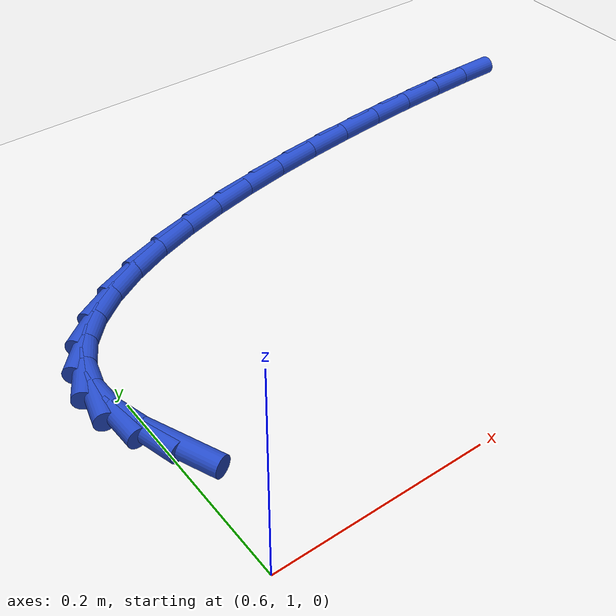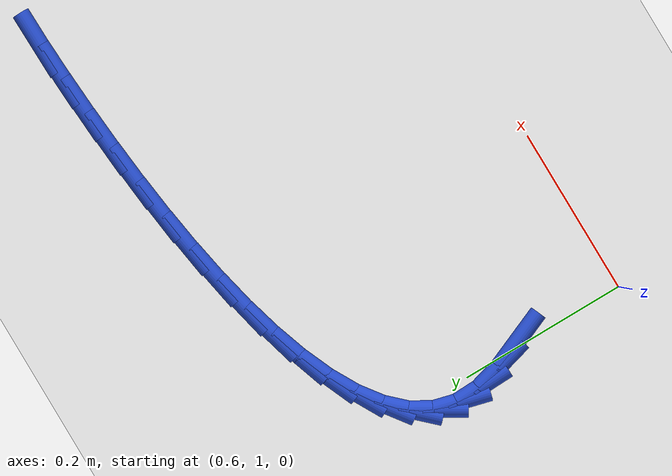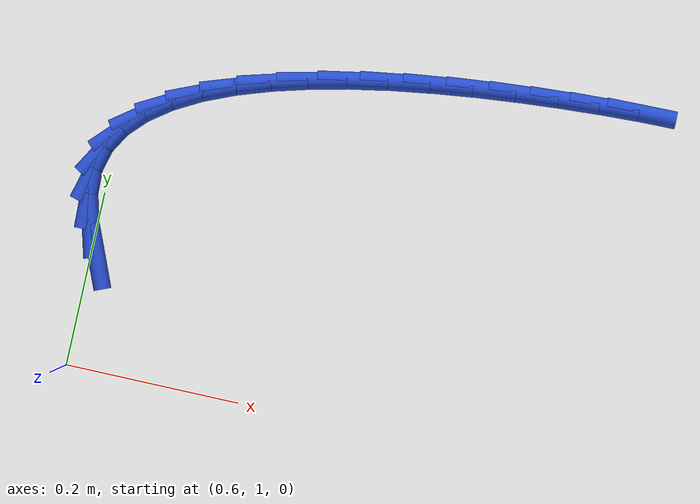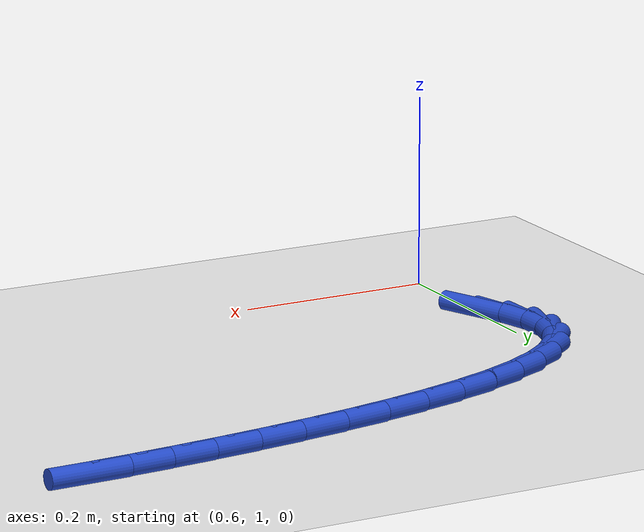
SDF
<sdf version="1.6">
 <world name="default">
  <model name="ground_plane">
   <static>1</static>
   <link name="link">
    <collision name="collision">
     <geometry><plane><normal>0 0 1</normal><size>100 100</size></plane></geometry>
     <surface><friction><ode><mu>100</mu><mu2>50</mu2></ode></friction></surface>
    </collision>
    <visual name="visual">
     <cast_shadows>0</cast_shadows>
     <geometry><plane><normal>0 0 1</normal><size>100 100</size></plane></geometry>
     <material>
      <script><uri>file://media/materials/scripts/gazebo.material</uri><name>Gazebo/WhiteGlow</name></script>
     </material>
    </visual>
   </link>
  </model>
  <model name="line">
   <link name="link_37">
    <pose>0.6066212108359131 1.1299925822410182 0.01 0 1.57 -1.1741649784683754</pose>
    <collision name="collision">
     <geometry><cylinder><radius>0.01</radius><length>0.08</length></cylinder></geometry>
    </collision>
    <visual name="visual">
     <material>
      <script><name>Gazebo/Blue</name><uri>file://media/materials/scripts/gazebo.material</uri></script>
     </material>
     <geometry><cylinder><radius>0.01</radius><length>0.08</length></cylinder></geometry>
    </visual>
   </link>
   <link name="link_38">
    <pose>0.5925089975911786 1.1636871106066904 0.01 0 1.57 -1.3055392816997946</pose>
    <collision name="collision">
     <geometry><cylinder><radius>0.01</radius><length>0.08</length></cylinder></geometry>
    </collision>
    <visual name="visual">
     <material>
      <script><name>Gazebo/Blue</name><uri>file://media/materials/scripts/gazebo.material</uri></script>
     </material>
     <geometry><cylinder><radius>0.01</radius><length>0.08</length></cylinder></geometry>
    </visual>
   </link>
   <link name="link_39">
    <pose>0.5838967862209155 1.1953894493612418 0.01 0 1.57 -1.53804504952124</pose>
    <collision name="collision">
     <geometry><cylinder><radius>0.01</radius><length>0.08</length></cylinder></geometry>
    </collision>
    <visual name="visual">
     <material>
      <script><name>Gazebo/Blue</name><uri>file://media/materials/scripts/gazebo.material</uri></script>
     </material>
     <geometry><cylinder><radius>0.01</radius><length>0.08</length></cylinder></geometry>
    </visual>
   </link>
   <link name="link_40">
    <pose>0.5829399467591998 1.2245943354037192 0.01 0 1.57 1.3158878228113873</pose>
    <collision name="collision">
     <geometry><cylinder><radius>0.01</radius><length>0.08</length></cylinder></geometry>
    </collision>
    <visual name="visual">
     <material>
      <script><name>Gazebo/Blue</name><uri>file://media/materials/scripts/gazebo.material</uri></script>
     </material>
     <geometry><cylinder><radius>0.01</radius><length>0.08</length></cylinder></geometry>
    </visual>
   </link>
   <link name="link_41">
    <pose>0.5898769505430752 1.2512160332833222 0.01 0 1.57 1.0409371398055502</pose>
    <collision name="collision">
     <geometry><cylinder><radius>0.01</radius><length>0.08</length></cylinder></geometry>
    </collision>
    <visual name="visual">
     <material>
      <script><name>Gazebo/Blue</name><uri>file://media/materials/scripts/gazebo.material</uri></script>
     </material>
     <geometry><cylinder><radius>0.01</radius><length>0.08</length></cylinder></geometry>
    </visual>
   </link>
   <link name="link_42">
    <pose>0.6040248727348425 1.275370462009472 0.01 0 1.57 0.8120974211857578</pose>
    <collision name="collision">
     <geometry><cylinder><radius>0.01</radius><length>0.08</length></cylinder></geometry>
    </collision>
    <visual name="visual">
     <material>
      <script><name>Gazebo/Blue</name><uri>file://media/materials/scripts/gazebo.material</uri></script>
     </material>
     <geometry><cylinder><radius>0.01</radius><length>0.08</length></cylinder></geometry>
    </visual>
   </link>
   <link name="link_43">
    <pose>0.6246949288013218 1.2971748230298725 0.01 0 1.57 0.6360693798284879</pose>
    <collision name="collision">
     <geometry><cylinder><radius>0.01</radius><length>0.08</length></cylinder></geometry>
    </collision>
    <visual name="visual">
     <material>
      <script><name>Gazebo/Blue</name><uri>file://media/materials/scripts/gazebo.material</uri></script>
     </material>
     <geometry><cylinder><radius>0.01</radius><length>0.08</length></cylinder></geometry>
    </visual>
   </link>
   <link name="link_44">
    <pose>0.6511983342093335 1.3167463177922294 0.01 0 1.57 0.5040419477916969</pose>
    <collision name="collision">
     <geometry><cylinder><radius>0.01</radius><length>0.08</length></cylinder></geometry>
    </collision>
    <visual name="visual">
     <material>
      <script><name>Gazebo/Blue</name><uri>file://media/materials/scripts/gazebo.material</uri></script>
     </material>
     <geometry><cylinder><radius>0.01</radius><length>0.08</length></cylinder></geometry>
    </visual>
   </link>
   <link name="link_45">
    <pose>0.6828463044256973 1.3342021477442465 0.01 0 1.57 0.4045250662987084</pose>
    <collision name="collision">
     <geometry><cylinder><radius>0.01</radius><length>0.08</length></cylinder></geometry>
    </collision>
    <visual name="visual">
     <material>
      <script><name>Gazebo/Blue</name><uri>file://media/materials/scripts/gazebo.material</uri></script>
     </material>
     <geometry><cylinder><radius>0.01</radius><length>0.08</length></cylinder></geometry>
    </visual>
   </link>
   <link name="link_46">
    <pose>0.7189500549172332 1.349659514333629 0.01 0 1.57 0.3281892255106754</pose>
    <collision name="collision">
     <geometry><cylinder><radius>0.01</radius><length>0.08</length></cylinder></geometry>
    </collision>
    <visual name="visual">
     <material>
      <script><name>Gazebo/Blue</name><uri>file://media/materials/scripts/gazebo.material</uri></script>
     </material>
     <geometry><cylinder><radius>0.01</radius><length>0.08</length></cylinder></geometry>
    </visual>
   </link>
   <link name="link_47">
    <pose>0.7588208011507614 1.3632356190080817 0.01 0 1.57 0.26838960862168726</pose>
    <collision name="collision">
     <geometry><cylinder><radius>0.01</radius><length>0.08</length></cylinder></geometry>
    </collision>
    <visual name="visual">
     <material>
      <script><name>Gazebo/Blue</name><uri>file://media/materials/scripts/gazebo.material</uri></script>
     </material>
     <geometry><cylinder><radius>0.01</radius><length>0.08</length></cylinder></geometry>
    </visual>
   </link>
   <link name="link_48">
    <pose>0.8017697585931022 1.3750476632153095 0.01 0 1.57 0.22055956956595446</pose>
    <collision name="collision">
     <geometry><cylinder><radius>0.01</radius><length>0.08</length></cylinder></geometry>
    </collision>
    <visual name="visual">
     <material>
      <script><name>Gazebo/Blue</name><uri>file://media/materials/scripts/gazebo.material</uri></script>
     </material>
     <geometry><cylinder><radius>0.01</radius><length>0.08</length></cylinder></geometry>
    </visual>
   </link>
   <link name="link_49">
    <pose>0.8471081427110748 1.3852128484030168 0.01 0 1.57 0.1815605313615968</pose>
    <collision name="collision">
     <geometry><cylinder><radius>0.01</radius><length>0.08</length></cylinder></geometry>
    </collision>
    <visual name="visual">
     <material>
      <script><name>Gazebo/Blue</name><uri>file://media/materials/scripts/gazebo.material</uri></script>
     </material>
     <geometry><cylinder><radius>0.01</radius><length>0.08</length></cylinder></geometry>
    </visual>
   </link>
   <link name="link_50">
    <pose>0.8941471689715003 1.393848376018909 0.01 0 1.57 0.14920416592148056</pose>
    <collision name="collision">
     <geometry><cylinder><radius>0.01</radius><length>0.08</length></cylinder></geometry>
    </collision>
    <visual name="visual">
     <material>
      <script><name>Gazebo/Blue</name><uri>file://media/materials/scripts/gazebo.material</uri></script>
     </material>
     <geometry><cylinder><radius>0.01</radius><length>0.08</length></cylinder></geometry>
    </visual>
   </link>
   <link name="link_51">
    <pose>0.9421980528411982 1.4010714475106905 0.01 0 1.57 0.12193358092339436</pose>
    <collision name="collision">
     <geometry><cylinder><radius>0.01</radius><length>0.08</length></cylinder></geometry>
    </collision>
    <visual name="visual">
     <material>
      <script><name>Gazebo/Blue</name><uri>file://media/materials/scripts/gazebo.material</uri></script>
     </material>
     <geometry><cylinder><radius>0.01</radius><length>0.08</length></cylinder></geometry>
    </visual>
   </link>
   <link name="link_52">
    <pose>0.9905720097869887 1.406999264326066 0.01 0 1.57 0.0986154852021085</pose>
    <collision name="collision">
     <geometry><cylinder><radius>0.01</radius><length>0.08</length></cylinder></geometry>
    </collision>
    <visual name="visual">
     <material>
      <script><name>Gazebo/Blue</name><uri>file://media/materials/scripts/gazebo.material</uri></script>
     </material>
     <geometry><cylinder><radius>0.01</radius><length>0.08</length></cylinder></geometry>
    </visual>
   </link>
   <link name="link_53">
    <pose>1.0385802552756918 1.4117490279127405 0.01 0 1.57 0.07840374802057481</pose>
    <collision name="collision">
     <geometry><cylinder><radius>0.01</radius><length>0.08</length></cylinder></geometry>
    </collision>
    <visual name="visual">
     <material>
      <script><name>Gazebo/Blue</name><uri>file://media/materials/scripts/gazebo.material</uri></script>
     </material>
     <geometry><cylinder><radius>0.01</radius><length>0.08</length></cylinder></geometry>
    </visual>
   </link>
   <link name="link_54">
    <pose>1.0855340047741273 1.4154379397184185 0.01 0 1.57 0.060647344001718215</pose>
    <collision name="collision">
     <geometry><cylinder><radius>0.01</radius><length>0.08</length></cylinder></geometry>
    </collision>
    <visual name="visual">
     <material>
      <script><name>Gazebo/Blue</name><uri>file://media/materials/scripts/gazebo.material</uri></script>
     </material>
     <geometry><cylinder><radius>0.01</radius><length>0.08</length></cylinder></geometry>
    </visual>
   </link>
   <link name="link_55">
    <pose>1.130744473749116 1.418183201190805 0.01 0 1.57 0.04356480185510023</pose>
    <collision name="collision">
     <geometry><cylinder><radius>0.01</radius><length>0.08</length></cylinder></geometry>
    </collision>
    <visual name="visual">
     <material>
      <script><name>Gazebo/Blue</name><uri>file://media/materials/scripts/gazebo.material</uri></script>
     </material>
     <geometry><cylinder><radius>0.01</radius><length>0.08</length></cylinder></geometry>
    </visual>
   </link>
   <link name="link_56">
    <pose>1.1736143919096131 1.4200520030919936 0.01 0 1.57 0.017813120627240837</pose>
    <collision name="collision">
     <geometry><cylinder><radius>0.01</radius><length>0.08</length></cylinder></geometry>
    </collision>
    <visual name="visual">
     <material>
      <script><name>Gazebo/Blue</name><uri>file://media/materials/scripts/gazebo.material</uri></script>
     </material>
     <geometry><cylinder><radius>0.01</radius><length>0.08</length></cylinder></geometry>
    </visual>
   </link>
  </model>
 </world>
</sdf>
